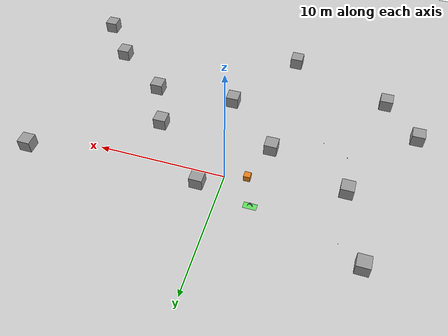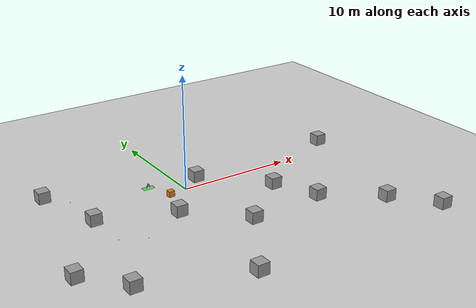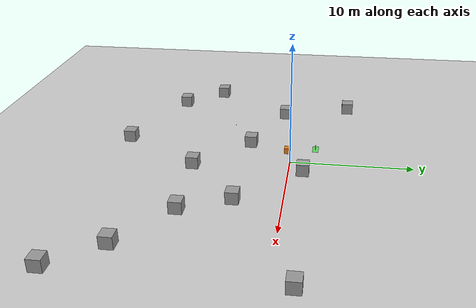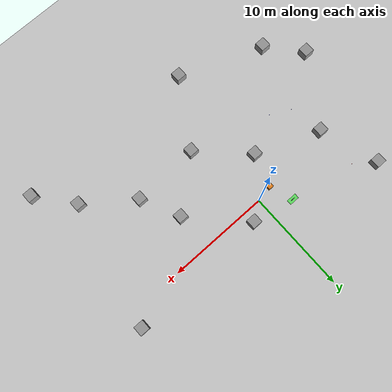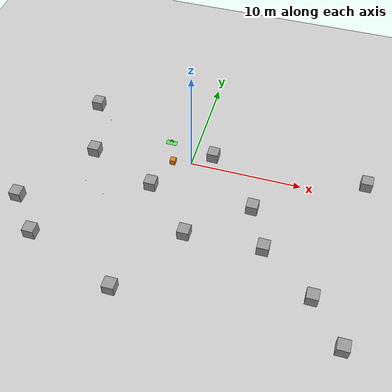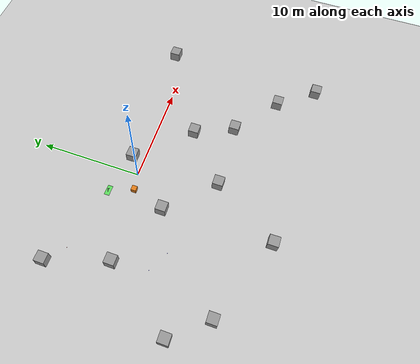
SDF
<sdf version="1.7">
 <world name="my_world">
  <model name="ground_plane">
   <static>1</static>
   <link name="link">
    <collision name="collision">
     <geometry><plane><normal>0 0 1</normal><size>100 100</size></plane></geometry>
     <surface>
      <contact><collide_bitmask>65535</collide_bitmask></contact>
      <friction><ode><mu>100</mu><mu2>50</mu2></ode></friction>
     </surface>
    </collision>
    <visual name="visual">
     <cast_shadows>0</cast_shadows>
     <geometry><plane><normal>0 0 1</normal><size>100 100</size></plane></geometry>
     <material>
      <script><uri>file://media/materials/scripts/gazebo.material</uri><name>Gazebo/Grey</name></script>
     </material>
    </visual>
   </link>
  </model>
  <model name="red_cube_3">
   <pose>-9.000 3.250 0.015 0 0 0</pose>
   <link name="link">
    <gravity>0</gravity>
    <inertial>
     <mass>0.4</mass>
     <inertia><ixx>0.0107</ixx><ixy>0</ixy><ixz>0</ixz><iyy>0.0107</iyy><iyz>0</iyz><izz>0.0107</izz></inertia>
    </inertial>
    <visual name="visual">
     <geometry><box><size>0.03 0.03 0.03</size></box></geometry>
     <material><ambient>1 0 0 1</ambient><diffuse>1 0 0 1</diffuse></material>
    </visual>
   </link>
   <plugin name="red_cube_3_follow" filename="libgazebo_ros_planar_move.so">
    <update_rate>20.0</update_rate>
    <publish_rate>0.0</publish_rate>
    <ros><namespace>/red_cube_3</namespace></ros>
    <publish_odom>false</publish_odom>
    <publish_odom_tf>false</publish_odom_tf>
   </plugin>
  </model>
  <model name="blue_cube_1">
   <pose>-6.500 -5.500 0.015 0 0 0</pose>
   <link name="link">
    <gravity>0</gravity>
    <inertial>
     <mass>0.4</mass>
     <inertia><ixx>0.0107</ixx><ixy>0</ixy><ixz>0</ixz><iyy>0.0107</iyy><iyz>0</iyz><izz>0.0107</izz></inertia>
    </inertial>
    <visual name="visual">
     <geometry><box><size>0.03 0.03 0.03</size></box></geometry>
     <material><ambient>0 0 1 1</ambient><diffuse>0 0 1 1</diffuse></material>
    </visual>
   </link>
   <plugin name="blue_cube_1_follow" filename="libgazebo_ros_planar_move.so">
    <update_rate>20.0</update_rate>
    <publish_rate>0.0</publish_rate>
    <ros><namespace>/blue_cube_1</namespace></ros>
    <publish_odom>false</publish_odom>
    <publish_odom_tf>false</publish_odom_tf>
   </plugin>
  </model>
  <model name="blue_cube_5">
   <pose>-8.500 -4.500 0.015 0 0 0</pose>
   <link name="link">
    <gravity>0</gravity>
    <inertial>
     <mass>0.4</mass>
     <inertia><ixx>0.0107</ixx><ixy>0</ixy><ixz>0</ixz><iyy>0.0107</iyy><iyz>0</iyz><izz>0.0107</izz></inertia>
    </inertial>
    <visual name="visual">
     <geometry><box><size>0.03 0.03 0.03</size></box></geometry>
     <material><ambient>0 0 1 1</ambient><diffuse>0 0 1 1</diffuse></material>
    </visual>
   </link>
   <plugin name="blue_cube_5_follow" filename="libgazebo_ros_planar_move.so">
    <update_rate>20.0</update_rate>
    <publish_rate>0.0</publish_rate>
    <ros><namespace>/blue_cube_5</namespace></ros>
    <publish_odom>false</publish_odom>
    <publish_odom_tf>false</publish_odom_tf>
   </plugin>
  </model>
  <model name="zone_a">
   <static>1</static>
   <pose>-2.500 2.000 0.01 0 0 0</pose>
   <link name="base">
    <visual name="visual">
     <geometry><box><size>1 0.5 0.02</size></box></geometry>
     <material><ambient>0 1 0 0.5</ambient><diffuse>0 1 0 0.5</diffuse></material>
    </visual>
   </link>
   <link name="letter_A_1">
    <pose>-0.1 0 0.22 0 0.4 0</pose>
    <visual name="v">
     <geometry><box><size>0.04 0.04 0.4</size></box></geometry>
     <material><ambient>0 0 0 1</ambient><diffuse>0 0 0 1</diffuse></material>
    </visual>
   </link>
   <link name="letter_A_2">
    <pose>0.1 0 0.22 0 -0.4 0</pose>
    <visual name="v">
     <geometry><box><size>0.04 0.04 0.4</size></box></geometry>
     <material><ambient>0 0 0 1</ambient><diffuse>0 0 0 1</diffuse></material>
    </visual>
   </link>
   <link name="letter_A_3">
    <pose>0 0 0.25 0 -0 0</pose>
    <visual name="v">
     <geometry><box><size>0.15 0.04 0.04</size></box></geometry>
     <material><ambient>0 0 0 1</ambient><diffuse>0 0 0 1</diffuse></material>
    </visual>
   </link>
  </model>
  <model name="obstacle_1">
   <pose>-1.66 -0.34 0.25 0 0 0</pose>
   <link name="link">
    <gravity>0</gravity>
    <inertial>
     <mass>8.0</mass>
     <inertia><ixx>0.667</ixx><ixy>0</ixy><ixz>0</ixz><iyy>0.667</iyy><iyz>0</iyz><izz>0.667</izz></inertia>
    </inertial>
    <collision name="collision">
     <geometry><box><size>0.5 0.5 0.5</size></box></geometry>
     <surface>
      <contact><collide_without_contact>false</collide_without_contact></contact>
      <friction><ode><mu>0.5</mu><mu2>0.0</mu2></ode></friction>
     </surface>
    </collision>
    <visual name="visual">
     <geometry><box><size>0.5 0.5 0.5</size></box></geometry>
     <material><ambient>0.9 0.5 0.1 1</ambient><diffuse>0.9 0.5 0.1 1</diffuse></material>
    </visual>
   </link>
   <plugin name="obstacle_1_drive" filename="libgazebo_ros_planar_move.so">
    <ros><namespace>/obstacle_1</namespace></ros>
    <update_rate>50.0</update_rate>
    <publish_rate>0.0</publish_rate>
    <publish_odom>false</publish_odom>
    <publish_odom_tf>false</publish_odom_tf>
   </plugin>
  </model>
  <model name="Untitled">
   <link name="link_0">
    <inertial>
     <mass>1</mass>
     <inertia>
      <ixx>0.166667</ixx>
      <ixy>0</ixy>
      <ixz>0</ixz>
      <iyy>0.166667</iyy>
      <iyz>0</iyz>
      <izz>0.166667</izz>
     </inertia>
    </inertial>
    <pose>-11.7361 10.376 0 0 -0 0</pose>
    <visual name="visual">
     <geometry><box><size>1 1 1</size></box></geometry>
     <material>
      <lighting>1</lighting>
      <script><uri>file://media/materials/scripts/gazebo.material</uri><name>Gazebo/Grey</name></script>
      <shader type="pixel"/>
     </material>
    </visual>
    <collision name="collision">
     <geometry><box><size>1 1 1</size></box></geometry>
     <surface>
      <friction>
       <ode><mu>1</mu><mu2>1</mu2><fdir1>0 0 0</fdir1><slip1>0</slip1><slip2>0</slip2></ode>
       <torsional>
        <coefficient>1</coefficient>
        <patch_radius>0</patch_radius>
        <surface_radius>0</surface_radius>
        <use_patch_radius>1</use_patch_radius>
        <ode><slip>0</slip></ode>
       </torsional>
      </friction>
      <bounce><restitution_coefficient>0</restitution_coefficient><threshold>1e+06</threshold></bounce>
      <contact>
       <collide_without_contact>0</collide_without_contact>
       <collide_without_contact_bitmask>1</collide_without_contact_bitmask>
       <collide_bitmask>1</collide_bitmask>
       <ode>
        <soft_cfm>0</soft_cfm>
        <soft_erp>0.2</soft_erp>
        <kp>2e+05</kp>
        <kd>1</kd>
        <max_vel>0.01</max_vel>
        <min_depth>0</min_depth>
       </ode>
       <bullet>
        <split_impulse>1</split_impulse>
        <split_impulse_penetration_threshold>-0.01</split_impulse_penetration_threshold>
        <soft_cfm>0</soft_cfm>
        <soft_erp>0.2</soft_erp>
        <kp>2e+05</kp>
        <kd>1</kd>
       </bullet>
      </contact>
     </surface>
    </collision>
   </link>
   <link name="link_1">
    <inertial>
     <mass>1</mass>
     <inertia>
      <ixx>0.166667</ixx>
      <ixy>0</ixy>
      <ixz>0</ixz>
      <iyy>0.166667</iyy>
      <iyz>0</iyz>
      <izz>0.166667</izz>
     </inertia>
    </inertial>
    <pose>-9.86873 4.59948 0 0 -0 0</pose>
    <visual name="visual">
     <geometry><box><size>1 1 1</size></box></geometry>
     <material>
      <lighting>1</lighting>
      <script><uri>file://media/materials/scripts/gazebo.material</uri><name>Gazebo/Grey</name></script>
      <shader type="pixel"/>
     </material>
    </visual>
    <collision name="collision">
     <geometry><box><size>1 1 1</size></box></geometry>
     <surface>
      <friction>
       <ode><mu>1</mu><mu2>1</mu2><fdir1>0 0 0</fdir1><slip1>0</slip1><slip2>0</slip2></ode>
       <torsional>
        <coefficient>1</coefficient>
        <patch_radius>0</patch_radius>
        <surface_radius>0</surface_radius>
        <use_patch_radius>1</use_patch_radius>
        <ode><slip>0</slip></ode>
       </torsional>
      </friction>
      <bounce><restitution_coefficient>0</restitution_coefficient><threshold>1e+06</threshold></bounce>
      <contact>
       <collide_without_contact>0</collide_without_contact>
       <collide_without_contact_bitmask>1</collide_without_contact_bitmask>
       <collide_bitmask>1</collide_bitmask>
       <ode>
        <soft_cfm>0</soft_cfm>
        <soft_erp>0.2</soft_erp>
        <kp>2e+05</kp>
        <kd>1</kd>
        <max_vel>0.01</max_vel>
        <min_depth>0</min_depth>
       </ode>
       <bullet>
        <split_impulse>1</split_impulse>
        <split_impulse_penetration_threshold>-0.01</split_impulse_penetration_threshold>
        <soft_cfm>0</soft_cfm>
        <soft_erp>0.2</soft_erp>
        <kp>2e+05</kp>
        <kd>1</kd>
       </bullet>
      </contact>
     </surface>
    </collision>
   </link>
   <link name="link_10">
    <inertial>
     <mass>1</mass>
     <inertia>
      <ixx>0.166667</ixx>
      <ixy>0</ixy>
      <ixz>0</ixz>
      <iyy>0.166667</iyy>
      <iyz>0</iyz>
      <izz>0.166667</izz>
     </inertia>
    </inertial>
    <pose>11.7248 -5.10078 0 0 -0 0</pose>
    <visual name="visual">
     <geometry><box><size>1 1 1</size></box></geometry>
     <material>
      <lighting>1</lighting>
      <script><uri>file://media/materials/scripts/gazebo.material</uri><name>Gazebo/Grey</name></script>
      <shader type="pixel"/>
     </material>
    </visual>
    <collision name="collision">
     <geometry><box><size>1 1 1</size></box></geometry>
     <surface>
      <friction>
       <ode><mu>1</mu><mu2>1</mu2><fdir1>0 0 0</fdir1><slip1>0</slip1><slip2>0</slip2></ode>
       <torsional>
        <coefficient>1</coefficient>
        <patch_radius>0</patch_radius>
        <surface_radius>0</surface_radius>
        <use_patch_radius>1</use_patch_radius>
        <ode><slip>0</slip></ode>
       </torsional>
      </friction>
      <bounce><restitution_coefficient>0</restitution_coefficient><threshold>1e+06</threshold></bounce>
      <contact>
       <collide_without_contact>0</collide_without_contact>
       <collide_without_contact_bitmask>1</collide_without_contact_bitmask>
       <collide_bitmask>1</collide_bitmask>
       <ode>
        <soft_cfm>0</soft_cfm>
        <soft_erp>0.2</soft_erp>
        <kp>2e+05</kp>
        <kd>1</kd>
        <max_vel>0.01</max_vel>
        <min_depth>0</min_depth>
       </ode>
       <bullet>
        <split_impulse>1</split_impulse>
        <split_impulse_penetration_threshold>-0.01</split_impulse_penetration_threshold>
        <soft_cfm>0</soft_cfm>
        <soft_erp>0.2</soft_erp>
        <kp>2e+05</kp>
        <kd>1</kd>
       </bullet>
      </contact>
     </surface>
    </collision>
   </link>
   <link name="link_11">
    <inertial>
     <mass>1</mass>
     <inertia>
      <ixx>0.166667</ixx>
      <ixy>0</ixy>
      <ixz>0</ixz>
      <iyy>0.166667</iyy>
      <iyz>0</iyz>
      <izz>0.166667</izz>
     </inertia>
    </inertial>
    <pose>-3.47257 -8.45059 0 0 -0 0</pose>
    <visual name="visual">
     <geometry><box><size>1 1 1</size></box></geometry>
     <material>
      <lighting>1</lighting>
      <script><uri>file://media/materials/scripts/gazebo.material</uri><name>Gazebo/Grey</name></script>
      <shader type="pixel"/>
     </material>
    </visual>
    <collision name="collision">
     <geometry><box><size>1 1 1</size></box></geometry>
     <surface>
      <friction>
       <ode><mu>1</mu><mu2>1</mu2><fdir1>0 0 0</fdir1><slip1>0</slip1><slip2>0</slip2></ode>
       <torsional>
        <coefficient>1</coefficient>
        <patch_radius>0</patch_radius>
        <surface_radius>0</surface_radius>
        <use_patch_radius>1</use_patch_radius>
        <ode><slip>0</slip></ode>
       </torsional>
      </friction>
      <bounce><restitution_coefficient>0</restitution_coefficient><threshold>1e+06</threshold></bounce>
      <contact>
       <collide_without_contact>0</collide_without_contact>
       <collide_without_contact_bitmask>1</collide_without_contact_bitmask>
       <collide_bitmask>1</collide_bitmask>
       <ode>
        <soft_cfm>0</soft_cfm>
        <soft_erp>0.2</soft_erp>
        <kp>2e+05</kp>
        <kd>1</kd>
        <max_vel>0.01</max_vel>
        <min_depth>0</min_depth>
       </ode>
       <bullet>
        <split_impulse>1</split_impulse>
        <split_impulse_penetration_threshold>-0.01</split_impulse_penetration_threshold>
        <soft_cfm>0</soft_cfm>
        <soft_erp>0.2</soft_erp>
        <kp>2e+05</kp>
        <kd>1</kd>
       </bullet>
      </contact>
     </surface>
    </collision>
   </link>
   <link name="link_12">
    <inertial>
     <mass>1</mass>
     <inertia>
      <ixx>0.166667</ixx>
      <ixy>0</ixy>
      <ixz>0</ixz>
      <iyy>0.166667</iyy>
      <iyz>0</iyz>
      <izz>0.166667</izz>
     </inertia>
    </inertial>
    <pose>14.5027 -8.59174 0 0 -0 0</pose>
    <visual name="visual">
     <geometry><box><size>1 1 1</size></box></geometry>
     <material>
      <lighting>1</lighting>
      <script><uri>file://media/materials/scripts/gazebo.material</uri><name>Gazebo/Grey</name></script>
      <shader type="pixel"/>
     </material>
    </visual>
    <collision name="collision">
     <geometry><box><size>1 1 1</size></box></geometry>
     <surface>
      <friction>
       <ode><mu>1</mu><mu2>1</mu2><fdir1>0 0 0</fdir1><slip1>0</slip1><slip2>0</slip2></ode>
       <torsional>
        <coefficient>1</coefficient>
        <patch_radius>0</patch_radius>
        <surface_radius>0</surface_radius>
        <use_patch_radius>1</use_patch_radius>
        <ode><slip>0</slip></ode>
       </torsional>
      </friction>
      <bounce><restitution_coefficient>0</restitution_coefficient><threshold>1e+06</threshold></bounce>
      <contact>
       <collide_without_contact>0</collide_without_contact>
       <collide_without_contact_bitmask>1</collide_without_contact_bitmask>
       <collide_bitmask>1</collide_bitmask>
       <ode>
        <soft_cfm>0</soft_cfm>
        <soft_erp>0.2</soft_erp>
        <kp>2e+05</kp>
        <kd>1</kd>
        <max_vel>0.01</max_vel>
        <min_depth>0</min_depth>
       </ode>
       <bullet>
        <split_impulse>1</split_impulse>
        <split_impulse_penetration_threshold>-0.01</split_impulse_penetration_threshold>
        <soft_cfm>0</soft_cfm>
        <soft_erp>0.2</soft_erp>
        <kp>2e+05</kp>
        <kd>1</kd>
       </bullet>
      </contact>
     </surface>
    </collision>
   </link>
   <link name="link_2">
    <inertial>
     <mass>1</mass>
     <inertia>
      <ixx>0.166667</ixx>
      <ixy>0</ixy>
      <ixz>0</ixz>
      <iyy>0.166667</iyy>
      <iyz>0</iyz>
      <izz>0.166667</izz>
     </inertia>
    </inertial>
    <pose>0.764529 6.87658 0 0 -0 0</pose>
    <visual name="visual">
     <geometry><box><size>1 1 1</size></box></geometry>
     <material>
      <lighting>1</lighting>
      <script><uri>file://media/materials/scripts/gazebo.material</uri><name>Gazebo/Grey</name></script>
      <shader type="pixel"/>
     </material>
    </visual>
    <collision name="collision">
     <geometry><box><size>1 1 1</size></box></geometry>
     <surface>
      <friction>
       <ode><mu>1</mu><mu2>1</mu2><fdir1>0 0 0</fdir1><slip1>0</slip1><slip2>0</slip2></ode>
       <torsional>
        <coefficient>1</coefficient>
        <patch_radius>0</patch_radius>
        <surface_radius>0</surface_radius>
        <use_patch_radius>1</use_patch_radius>
        <ode><slip>0</slip></ode>
       </torsional>
      </friction>
      <bounce><restitution_coefficient>0</restitution_coefficient><threshold>1e+06</threshold></bounce>
      <contact>
       <collide_without_contact>0</collide_without_contact>
       <collide_without_contact_bitmask>1</collide_without_contact_bitmask>
       <collide_bitmask>1</collide_bitmask>
       <ode>
        <soft_cfm>0</soft_cfm>
        <soft_erp>0.2</soft_erp>
        <kp>2e+05</kp>
        <kd>1</kd>
        <max_vel>0.01</max_vel>
        <min_depth>0</min_depth>
       </ode>
       <bullet>
        <split_impulse>1</split_impulse>
        <split_impulse_penetration_threshold>-0.01</split_impulse_penetration_threshold>
        <soft_cfm>0</soft_cfm>
        <soft_erp>0.2</soft_erp>
        <kp>2e+05</kp>
        <kd>1</kd>
       </bullet>
      </contact>
     </surface>
    </collision>
   </link>
   <link name="link_3">
    <inertial>
     <mass>1</mass>
     <inertia>
      <ixx>0.166667</ixx>
      <ixy>0</ixy>
      <ixz>0</ixz>
      <iyy>0.166667</iyy>
      <iyz>0</iyz>
      <izz>0.166667</izz>
     </inertia>
    </inertial>
    <pose>14.5365 7.25535 0 0 -0 0</pose>
    <visual name="visual">
     <geometry><box><size>1 1 1</size></box></geometry>
     <material>
      <lighting>1</lighting>
      <script><uri>file://media/materials/scripts/gazebo.material</uri><name>Gazebo/Grey</name></script>
      <shader type="pixel"/>
     </material>
    </visual>
    <collision name="collision">
     <geometry><box><size>1 1 1</size></box></geometry>
     <surface>
      <friction>
       <ode><mu>1</mu><mu2>1</mu2><fdir1>0 0 0</fdir1><slip1>0</slip1><slip2>0</slip2></ode>
       <torsional>
        <coefficient>1</coefficient>
        <patch_radius>0</patch_radius>
        <surface_radius>0</surface_radius>
        <use_patch_radius>1</use_patch_radius>
        <ode><slip>0</slip></ode>
       </torsional>
      </friction>
      <bounce><restitution_coefficient>0</restitution_coefficient><threshold>1e+06</threshold></bounce>
      <contact>
       <collide_without_contact>0</collide_without_contact>
       <collide_without_contact_bitmask>1</collide_without_contact_bitmask>
       <collide_bitmask>1</collide_bitmask>
       <ode>
        <soft_cfm>0</soft_cfm>
        <soft_erp>0.2</soft_erp>
        <kp>2e+05</kp>
        <kd>1</kd>
        <max_vel>0.01</max_vel>
        <min_depth>0</min_depth>
       </ode>
       <bullet>
        <split_impulse>1</split_impulse>
        <split_impulse_penetration_threshold>-0.01</split_impulse_penetration_threshold>
        <soft_cfm>0</soft_cfm>
        <soft_erp>0.2</soft_erp>
        <kp>2e+05</kp>
        <kd>1</kd>
       </bullet>
      </contact>
     </surface>
    </collision>
   </link>
   <link name="link_4">
    <inertial>
     <mass>1</mass>
     <inertia>
      <ixx>0.166667</ixx>
      <ixy>0</ixy>
      <ixz>0</ixz>
      <iyy>0.166667</iyy>
      <iyz>0</iyz>
      <izz>0.166667</izz>
     </inertia>
    </inertial>
    <pose>-3.6643 2.16941 0 0 -0 0</pose>
    <visual name="visual">
     <geometry><box><size>1 1 1</size></box></geometry>
     <material>
      <lighting>1</lighting>
      <script><uri>file://media/materials/scripts/gazebo.material</uri><name>Gazebo/Grey</name></script>
      <shader type="pixel"/>
     </material>
    </visual>
    <collision name="collision">
     <geometry><box><size>1 1 1</size></box></geometry>
     <surface>
      <friction>
       <ode><mu>1</mu><mu2>1</mu2><fdir1>0 0 0</fdir1><slip1>0</slip1><slip2>0</slip2></ode>
       <torsional>
        <coefficient>1</coefficient>
        <patch_radius>0</patch_radius>
        <surface_radius>0</surface_radius>
        <use_patch_radius>1</use_patch_radius>
        <ode><slip>0</slip></ode>
       </torsional>
      </friction>
      <bounce><restitution_coefficient>0</restitution_coefficient><threshold>1e+06</threshold></bounce>
      <contact>
       <collide_without_contact>0</collide_without_contact>
       <collide_without_contact_bitmask>1</collide_without_contact_bitmask>
       <collide_bitmask>1</collide_bitmask>
       <ode>
        <soft_cfm>0</soft_cfm>
        <soft_erp>0.2</soft_erp>
        <kp>2e+05</kp>
        <kd>1</kd>
        <max_vel>0.01</max_vel>
        <min_depth>0</min_depth>
       </ode>
       <bullet>
        <split_impulse>1</split_impulse>
        <split_impulse_penetration_threshold>-0.01</split_impulse_penetration_threshold>
        <soft_cfm>0</soft_cfm>
        <soft_erp>0.2</soft_erp>
        <kp>2e+05</kp>
        <kd>1</kd>
       </bullet>
      </contact>
     </surface>
    </collision>
   </link>
   <link name="link_5">
    <inertial>
     <mass>1</mass>
     <inertia>
      <ixx>0.166667</ixx>
      <ixy>0</ixy>
      <ixz>0</ixz>
      <iyy>0.166667</iyy>
      <iyz>0</iyz>
      <izz>0.166667</izz>
     </inertia>
    </inertial>
    <pose>5.45574 2.04349 0 0 -0 0</pose>
    <visual name="visual">
     <geometry><box><size>1 1 1</size></box></geometry>
     <material>
      <lighting>1</lighting>
      <script><uri>file://media/materials/scripts/gazebo.material</uri><name>Gazebo/Grey</name></script>
      <shader type="pixel"/>
     </material>
    </visual>
    <collision name="collision">
     <geometry><box><size>1 1 1</size></box></geometry>
     <surface>
      <friction>
       <ode><mu>1</mu><mu2>1</mu2><fdir1>0 0 0</fdir1><slip1>0</slip1><slip2>0</slip2></ode>
       <torsional>
        <coefficient>1</coefficient>
        <patch_radius>0</patch_radius>
        <surface_radius>0</surface_radius>
        <use_patch_radius>1</use_patch_radius>
        <ode><slip>0</slip></ode>
       </torsional>
      </friction>
      <bounce><restitution_coefficient>0</restitution_coefficient><threshold>1e+06</threshold></bounce>
      <contact>
       <collide_without_contact>0</collide_without_contact>
       <collide_without_contact_bitmask>1</collide_without_contact_bitmask>
       <collide_bitmask>1</collide_bitmask>
       <ode>
        <soft_cfm>0</soft_cfm>
        <soft_erp>0.2</soft_erp>
        <kp>2e+05</kp>
        <kd>1</kd>
        <max_vel>0.01</max_vel>
        <min_depth>0</min_depth>
       </ode>
       <bullet>
        <split_impulse>1</split_impulse>
        <split_impulse_penetration_threshold>-0.01</split_impulse_penetration_threshold>
        <soft_cfm>0</soft_cfm>
        <soft_erp>0.2</soft_erp>
        <kp>2e+05</kp>
        <kd>1</kd>
       </bullet>
      </contact>
     </surface>
    </collision>
   </link>
   <link name="link_6">
    <inertial>
     <mass>1</mass>
     <inertia>
      <ixx>0.166667</ixx>
      <ixy>0</ixy>
      <ixz>0</ixz>
      <iyy>0.166667</iyy>
      <iyz>0</iyz>
      <izz>0.166667</izz>
     </inertia>
    </inertial>
    <pose>7.19325 -1.71375 0 0 -0 0</pose>
    <visual name="visual">
     <geometry><box><size>1 1 1</size></box></geometry>
     <material>
      <lighting>1</lighting>
      <script><uri>file://media/materials/scripts/gazebo.material</uri><name>Gazebo/Grey</name></script>
      <shader type="pixel"/>
     </material>
    </visual>
    <collision name="collision">
     <geometry><box><size>1 1 1</size></box></geometry>
     <surface>
      <friction>
       <ode><mu>1</mu><mu2>1</mu2><fdir1>0 0 0</fdir1><slip1>0</slip1><slip2>0</slip2></ode>
       <torsional>
        <coefficient>1</coefficient>
        <patch_radius>0</patch_radius>
        <surface_radius>0</surface_radius>
        <use_patch_radius>1</use_patch_radius>
        <ode><slip>0</slip></ode>
       </torsional>
      </friction>
      <bounce><restitution_coefficient>0</restitution_coefficient><threshold>1e+06</threshold></bounce>
      <contact>
       <collide_without_contact>0</collide_without_contact>
       <collide_without_contact_bitmask>1</collide_without_contact_bitmask>
       <collide_bitmask>1</collide_bitmask>
       <ode>
        <soft_cfm>0</soft_cfm>
        <soft_erp>0.2</soft_erp>
        <kp>2e+05</kp>
        <kd>1</kd>
        <max_vel>0.01</max_vel>
        <min_depth>0</min_depth>
       </ode>
       <bullet>
        <split_impulse>1</split_impulse>
        <split_impulse_penetration_threshold>-0.01</split_impulse_penetration_threshold>
        <soft_cfm>0</soft_cfm>
        <soft_erp>0.2</soft_erp>
        <kp>2e+05</kp>
        <kd>1</kd>
       </bullet>
      </contact>
     </surface>
    </collision>
   </link>
   <link name="link_7">
    <inertial>
     <mass>1</mass>
     <inertia>
      <ixx>0.166667</ixx>
      <ixy>0</ixy>
      <ixz>0</ixz>
      <iyy>0.166667</iyy>
      <iyz>0</iyz>
      <izz>0.166667</izz>
     </inertia>
    </inertial>
    <pose>0.605863 -2.01965 0 0 -0 0</pose>
    <visual name="visual">
     <geometry><box><size>1 1 1</size></box></geometry>
     <material>
      <lighting>1</lighting>
      <script><uri>file://media/materials/scripts/gazebo.material</uri><name>Gazebo/Grey</name></script>
      <shader type="pixel"/>
     </material>
    </visual>
    <collision name="collision">
     <geometry><box><size>1 1 1</size></box></geometry>
     <surface>
      <friction>
       <ode><mu>1</mu><mu2>1</mu2><fdir1>0 0 0</fdir1><slip1>0</slip1><slip2>0</slip2></ode>
       <torsional>
        <coefficient>1</coefficient>
        <patch_radius>0</patch_radius>
        <surface_radius>0</surface_radius>
        <use_patch_radius>1</use_patch_radius>
        <ode><slip>0</slip></ode>
       </torsional>
      </friction>
      <bounce><restitution_coefficient>0</restitution_coefficient><threshold>1e+06</threshold></bounce>
      <contact>
       <collide_without_contact>0</collide_without_contact>
       <collide_without_contact_bitmask>1</collide_without_contact_bitmask>
       <collide_bitmask>1</collide_bitmask>
       <ode>
        <soft_cfm>0</soft_cfm>
        <soft_erp>0.2</soft_erp>
        <kp>2e+05</kp>
        <kd>1</kd>
        <max_vel>0.01</max_vel>
        <min_depth>0</min_depth>
       </ode>
       <bullet>
        <split_impulse>1</split_impulse>
        <split_impulse_penetration_threshold>-0.01</split_impulse_penetration_threshold>
        <soft_cfm>0</soft_cfm>
        <soft_erp>0.2</soft_erp>
        <kp>2e+05</kp>
        <kd>1</kd>
       </bullet>
      </contact>
     </surface>
    </collision>
   </link>
   <link name="link_8">
    <inertial>
     <mass>1</mass>
     <inertia>
      <ixx>0.166667</ixx>
      <ixy>0</ixy>
      <ixz>0</ixz>
      <iyy>0.166667</iyy>
      <iyz>0</iyz>
      <izz>0.166667</izz>
     </inertia>
    </inertial>
    <pose>-14.4058 -2.10305 0 0 -0 0</pose>
    <visual name="visual">
     <geometry><box><size>1 1 1</size></box></geometry>
     <material>
      <lighting>1</lighting>
      <script><uri>file://media/materials/scripts/gazebo.material</uri><name>Gazebo/Grey</name></script>
      <shader type="pixel"/>
     </material>
    </visual>
    <collision name="collision">
     <geometry><box><size>1 1 1</size></box></geometry>
     <surface>
      <friction>
       <ode><mu>1</mu><mu2>1</mu2><fdir1>0 0 0</fdir1><slip1>0</slip1><slip2>0</slip2></ode>
       <torsional>
        <coefficient>1</coefficient>
        <patch_radius>0</patch_radius>
        <surface_radius>0</surface_radius>
        <use_patch_radius>1</use_patch_radius>
        <ode><slip>0</slip></ode>
       </torsional>
      </friction>
      <bounce><restitution_coefficient>0</restitution_coefficient><threshold>1e+06</threshold></bounce>
      <contact>
       <collide_without_contact>0</collide_without_contact>
       <collide_without_contact_bitmask>1</collide_without_contact_bitmask>
       <collide_bitmask>1</collide_bitmask>
       <ode>
        <soft_cfm>0</soft_cfm>
        <soft_erp>0.2</soft_erp>
        <kp>2e+05</kp>
        <kd>1</kd>
        <max_vel>0.01</max_vel>
        <min_depth>0</min_depth>
       </ode>
       <bullet>
        <split_impulse>1</split_impulse>
        <split_impulse_penetration_threshold>-0.01</split_impulse_penetration_threshold>
        <soft_cfm>0</soft_cfm>
        <soft_erp>0.2</soft_erp>
        <kp>2e+05</kp>
        <kd>1</kd>
       </bullet>
      </contact>
     </surface>
    </collision>
   </link>
   <link name="link_9">
    <inertial>
     <mass>1</mass>
     <inertia>
      <ixx>0.166667</ixx>
      <ixy>0</ixy>
      <ixz>0</ixz>
      <iyy>0.166667</iyy>
      <iyz>0</iyz>
      <izz>0.166667</izz>
     </inertia>
    </inertial>
    <pose>-11.6359 -5.34072 0 0 -0 0</pose>
    <visual name="visual">
     <geometry><box><size>1 1 1</size></box></geometry>
     <material>
      <lighting>1</lighting>
      <script><uri>file://media/materials/scripts/gazebo.material</uri><name>Gazebo/Grey</name></script>
      <shader type="pixel"/>
     </material>
    </visual>
    <collision name="collision">
     <geometry><box><size>1 1 1</size></box></geometry>
     <surface>
      <friction>
       <ode><mu>1</mu><mu2>1</mu2><fdir1>0 0 0</fdir1><slip1>0</slip1><slip2>0</slip2></ode>
       <torsional>
        <coefficient>1</coefficient>
        <patch_radius>0</patch_radius>
        <surface_radius>0</surface_radius>
        <use_patch_radius>1</use_patch_radius>
        <ode><slip>0</slip></ode>
       </torsional>
      </friction>
      <bounce><restitution_coefficient>0</restitution_coefficient><threshold>1e+06</threshold></bounce>
      <contact>
       <collide_without_contact>0</collide_without_contact>
       <collide_without_contact_bitmask>1</collide_without_contact_bitmask>
       <collide_bitmask>1</collide_bitmask>
       <ode>
        <soft_cfm>0</soft_cfm>
        <soft_erp>0.2</soft_erp>
        <kp>2e+05</kp>
        <kd>1</kd>
        <max_vel>0.01</max_vel>
        <min_depth>0</min_depth>
       </ode>
       <bullet>
        <split_impulse>1</split_impulse>
        <split_impulse_penetration_threshold>-0.01</split_impulse_penetration_threshold>
        <soft_cfm>0</soft_cfm>
        <soft_erp>0.2</soft_erp>
        <kp>2e+05</kp>
        <kd>1</kd>
       </bullet>
      </contact>
     </surface>
    </collision>
   </link>
   <static>0</static>
   <pose>0.968798 -5.71233 0.5 0 -0 0</pose>
  </model>
 </world>
</sdf>
